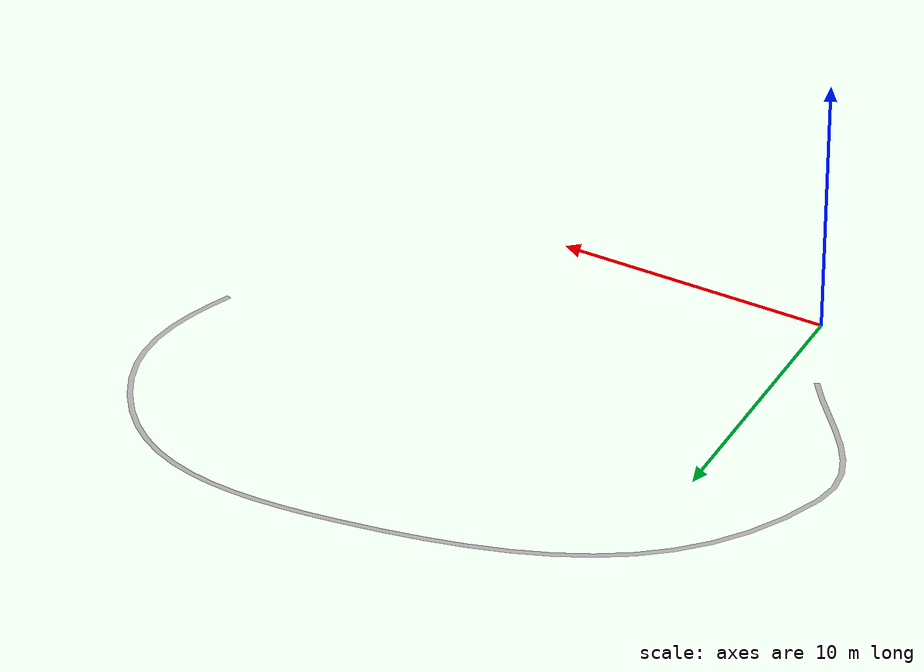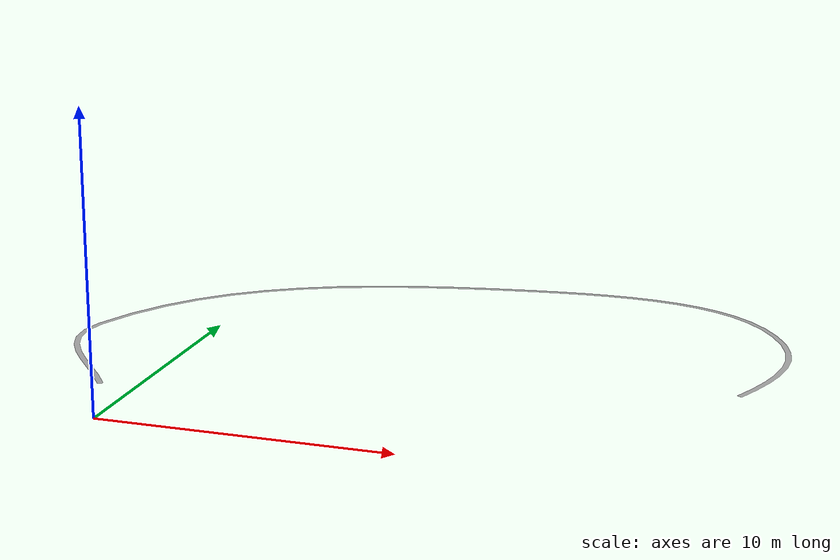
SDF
<?xml version="1.0"?>
<sdf version="1.5">
    <model name="road3_1">
        <static>true</static>
        <link name="link">
            <collision name="collision">
                <pose>0 0 0 0 0 0</pose>
                <geometry>
                    <mesh>
                        <uri>model://road3_1/meshes/road3_1.dae</uri>
                    </mesh>
                </geometry>
            </collision>
            <visual name="visual">
              <pose>0 0 0 0 0 0</pose>
              <geometry>
              <mesh>
                 <uri>model://road3_1/meshes/road3_1.dae</uri>
              </mesh>
              </geometry>
             </visual>
        </link>
    </model>
</sdf>
